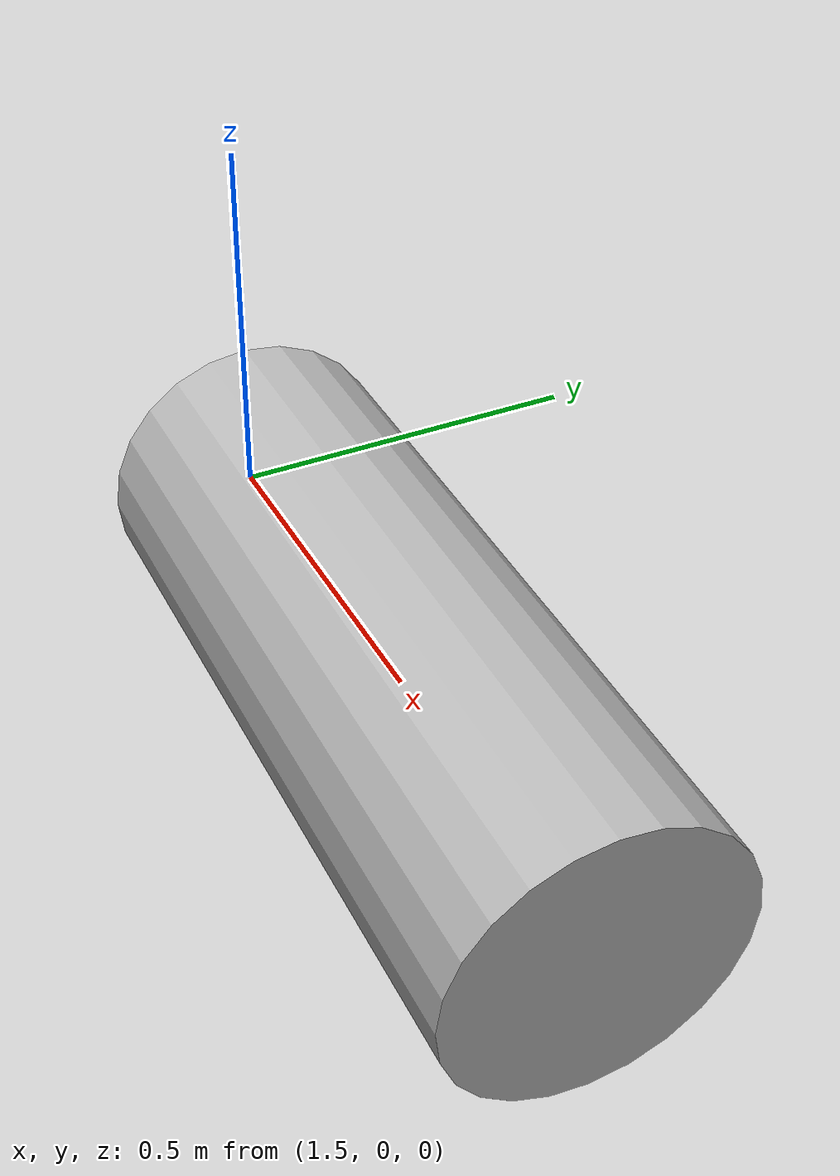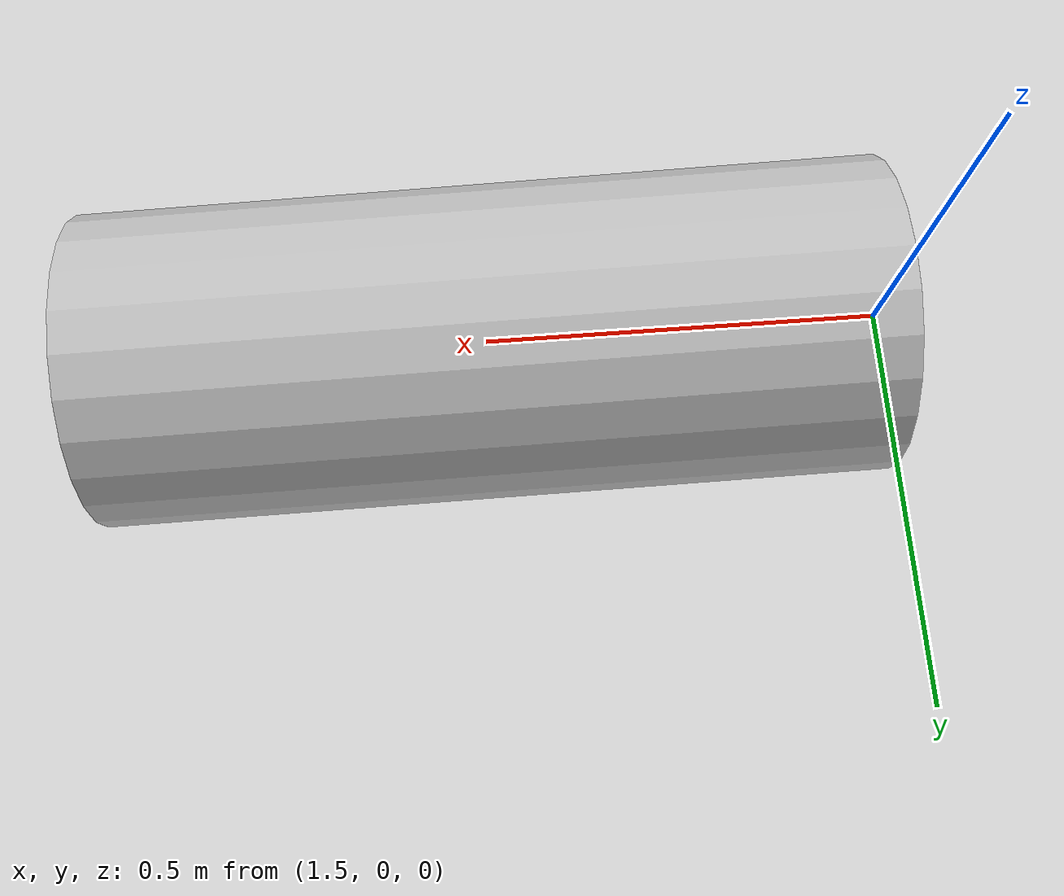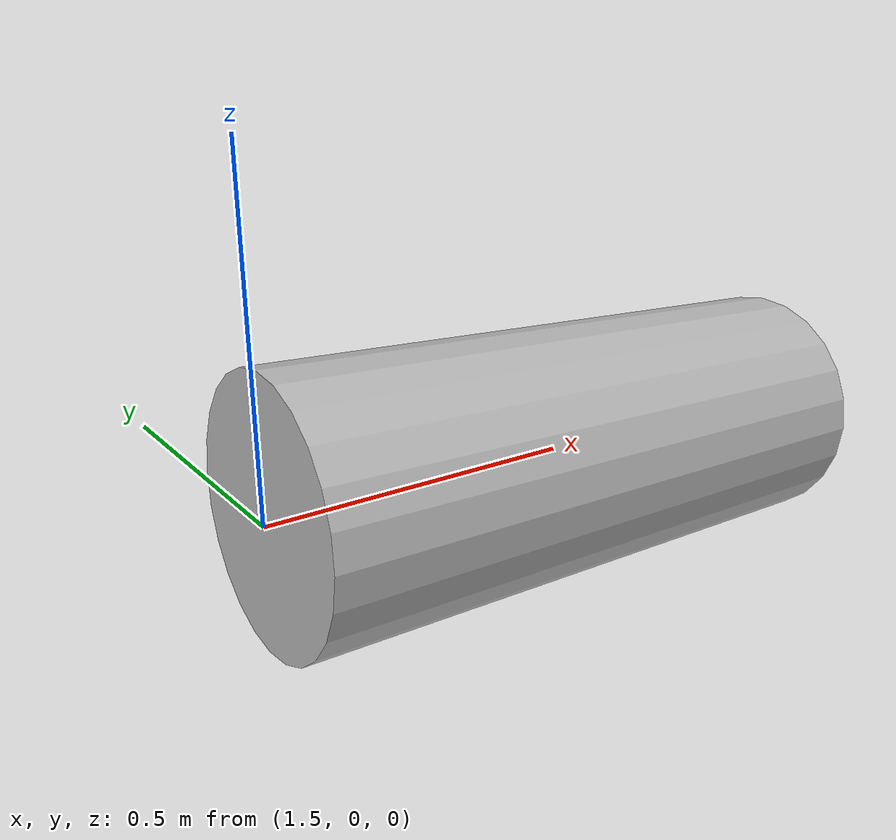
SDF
<?xml version="1.0"?>
<sdf version="1.4">
	<model name="object_2">
		<pose>2 0 0 0 4.74 0</pose>
		<static>false</static>
		<link name="ob_2_link">

			<collision name="collision">
				<geometry>
				<cylinder>
					<radius>0.2</radius>
					<length>1</length>
				</cylinder>
				</geometry>
			</collision>

			<visual name="visual">
				<geometry>
				<cylinder>
					<radius>0.2</radius>
					<length>1</length>
				</cylinder>
				</geometry>
			</visual>
		</link>
	</model>
</sdf>
